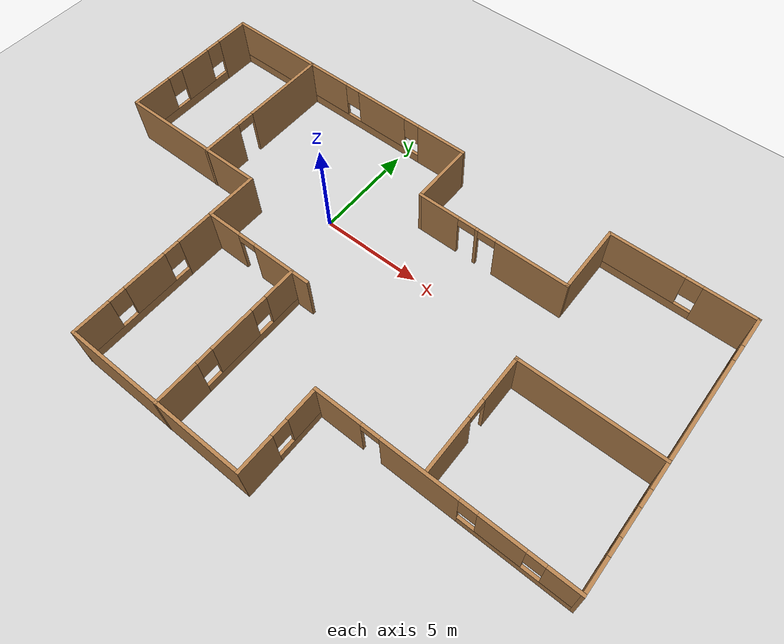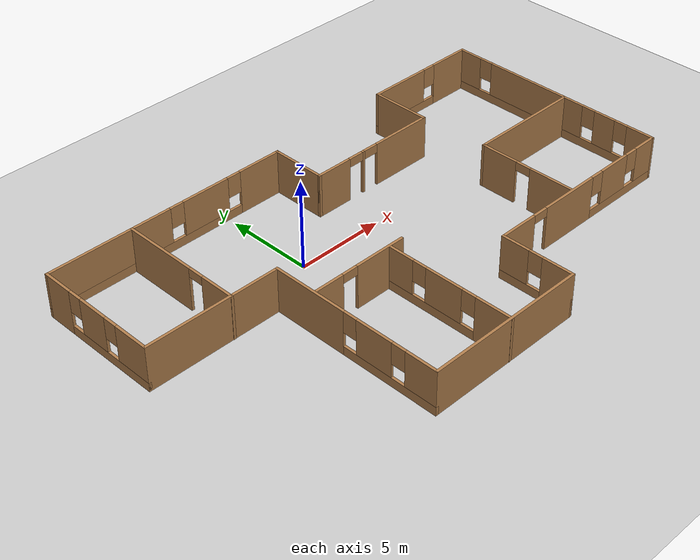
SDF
<sdf version="1.6">
 <world name="default">
  <light name="sun" type="directional">
   <pose>0 0 10 0 -0 0</pose>
   <diffuse>0.8 0.8 0.8 1</diffuse>
   <specular>0.2 0.2 0.2 1</specular>
   <attenuation>
    <range>1000</range>
    <constant>0.9</constant>
    <linear>0.01</linear>
    <quadratic>0.001</quadratic>
   </attenuation>
   <direction>-0.5 0.1 -0.9</direction>
  </light>
  <model name="ground_plane">
   <static>1</static>
   <link name="link">
    <collision name="collision">
     <geometry><plane><normal>0 0 1</normal><size>100 100</size></plane></geometry>
     <surface><friction><ode><mu>100</mu><mu2>50</mu2></ode></friction></surface>
    </collision>
    <visual name="visual">
     <cast_shadows>0</cast_shadows>
     <geometry><plane><normal>0 0 1</normal><size>100 100</size></plane></geometry>
     <material>
      <script><uri>file://media/materials/scripts/gazebo.material</uri><name>Gazebo/Grey</name></script>
     </material>
    </visual>
   </link>
  </model>
  <gravity>0 0 -9.8</gravity>
  <magnetic_field>6e-06 2.3e-05 -4.2e-05</magnetic_field>
  <atmosphere type="adiabatic"/>
  <physics name="default_physics" default="0" type="ode">
   <max_step_size>0.001</max_step_size>
   <real_time_factor>1</real_time_factor>
   <real_time_update_rate>1000</real_time_update_rate>
  </physics>
  <scene><ambient>0.4 0.4 0.4 1</ambient><background>0.7 0.7 0.7 1</background><shadows>1</shadows></scene>
  <spherical_coordinates>
   <surface_model>EARTH_WGS84</surface_model>
   <latitude_deg>0</latitude_deg>
   <longitude_deg>0</longitude_deg>
   <elevation>0</elevation>
   <heading_deg>0</heading_deg>
  </spherical_coordinates>
  <model name="wood">
   <pose>3.635 -2.82458 0 0 -0 0</pose>
   <link name="Wall_0">
    <pose>-6.675 -3.67042 0 0 0 -1.5708</pose>
    <visual name="Wall_0_Visual_0">
     <pose>-2.79686 0 1.25 0 -0 0</pose>
     <geometry><box><size>4.40627 0.15 2.5</size></box></geometry>
     <material>
      <script><uri>file://media/materials/scripts/gazebo.material</uri><name>Gazebo/Wood</name></script>
      <ambient>1 1 1 1</ambient>
     </material>
     <meta><layer>0</layer></meta>
    </visual>
    <collision name="Wall_0_Collision_0">
     <geometry><box><size>4.40627 0.15 2.5</size></box></geometry>
     <pose>-2.79686 0 1.25 0 -0 0</pose>
    </collision>
    <visual name="Wall_0_Visual_1">
     <pose>2.20314 0 0.25 0 -0 0</pose>
     <geometry><box><size>5.59373 0.15 0.5</size></box></geometry>
     <material>
      <script><uri>file://media/materials/scripts/gazebo.material</uri><name>Gazebo/Wood</name></script>
      <ambient>1 1 1 1</ambient>
     </material>
     <meta><layer>0</layer></meta>
    </visual>
    <collision name="Wall_0_Collision_1">
     <geometry><box><size>5.59373 0.15 0.5</size></box></geometry>
     <pose>2.20314 0 0.25 0 -0 0</pose>
    </collision>
    <visual name="Wall_0_Visual_2">
     <pose>1.27544 0 1.5 0 -0 0</pose>
     <geometry><box><size>2.13833 0.15 2</size></box></geometry>
     <material>
      <script><uri>file://media/materials/scripts/gazebo.material</uri><name>Gazebo/Wood</name></script>
      <ambient>1 1 1 1</ambient>
     </material>
     <meta><layer>0</layer></meta>
    </visual>
    <collision name="Wall_0_Collision_2">
     <geometry><box><size>2.13833 0.15 2</size></box></geometry>
     <pose>1.27544 0 1.5 0 -0 0</pose>
    </collision>
    <visual name="Wall_0_Visual_3">
     <pose>4.0723 0 1.5 0 -0 0</pose>
     <geometry><box><size>1.85539 0.15 2</size></box></geometry>
     <material>
      <script><uri>file://media/materials/scripts/gazebo.material</uri><name>Gazebo/Wood</name></script>
      <ambient>1 1 1 1</ambient>
     </material>
     <meta><layer>0</layer></meta>
    </visual>
    <collision name="Wall_0_Collision_3">
     <geometry><box><size>1.85539 0.15 2</size></box></geometry>
     <pose>4.0723 0 1.5 0 -0 0</pose>
    </collision>
    <visual name="Wall_0_Visual_4">
     <pose>-0.193725 0 1.9 0 -0 0</pose>
     <geometry><box><size>0.8 0.15 1.2</size></box></geometry>
     <material>
      <script><uri>file://media/materials/scripts/gazebo.material</uri><name>Gazebo/Wood</name></script>
      <ambient>1 1 1 1</ambient>
     </material>
     <meta><layer>0</layer></meta>
    </visual>
    <collision name="Wall_0_Collision_4">
     <geometry><box><size>0.8 0.15 1.2</size></box></geometry>
     <pose>-0.193725 0 1.9 0 -0 0</pose>
    </collision>
    <visual name="Wall_0_Visual_5">
     <pose>2.74461 0 1.9 0 -0 0</pose>
     <geometry><box><size>0.8 0.15 1.2</size></box></geometry>
     <material>
      <script><uri>file://media/materials/scripts/gazebo.material</uri><name>Gazebo/Wood</name></script>
      <ambient>1 1 1 1</ambient>
     </material>
     <meta><layer>0</layer></meta>
    </visual>
    <collision name="Wall_0_Collision_5">
     <geometry><box><size>0.8 0.15 1.2</size></box></geometry>
     <pose>2.74461 0 1.9 0 -0 0</pose>
    </collision>
   </link>
   <link name="Wall_1">
    <collision name="Wall_1_Collision">
     <geometry><box><size>9.25 0.15 2.5</size></box></geometry>
     <pose>0 0 1.25 0 -0 0</pose>
    </collision>
    <visual name="Wall_1_Visual">
     <pose>0 0 1.25 0 -0 0</pose>
     <geometry><box><size>9.25 0.15 2.5</size></box></geometry>
     <material>
      <script><uri>file://media/materials/scripts/gazebo.material</uri><name>Gazebo/Wood</name></script>
      <ambient>1 1 1 1</ambient>
     </material>
     <meta><layer>0</layer></meta>
    </visual>
    <pose>-2.125 -8.59542 0 0 -0 0</pose>
   </link>
   <link name="Wall_10">
    <pose>-14.275 4.80458 0 0 0 -1.5708</pose>
    <visual name="Wall_10_Visual_0">
     <pose>-2.72535 0 1.25 0 -0 0</pose>
     <geometry><box><size>1.79929 0.15 2.5</size></box></geometry>
     <material>
      <script><uri>file://media/materials/scripts/gazebo.material</uri><name>Gazebo/Wood</name></script>
      <ambient>1 1 1 1</ambient>
     </material>
     <meta><layer>0</layer></meta>
    </visual>
    <collision name="Wall_10_Collision_0">
     <geometry><box><size>1.79929 0.15 2.5</size></box></geometry>
     <pose>-2.72535 0 1.25 0 -0 0</pose>
    </collision>
    <visual name="Wall_10_Visual_1">
     <pose>0.899645 0 0.25 0 -0 0</pose>
     <geometry><box><size>5.45071 0.15 0.5</size></box></geometry>
     <material>
      <script><uri>file://media/materials/scripts/gazebo.material</uri><name>Gazebo/Wood</name></script>
      <ambient>1 1 1 1</ambient>
     </material>
     <meta><layer>0</layer></meta>
    </visual>
    <collision name="Wall_10_Collision_1">
     <geometry><box><size>5.45071 0.15 0.5</size></box></geometry>
     <pose>0.899645 0 0.25 0 -0 0</pose>
    </collision>
    <visual name="Wall_10_Visual_2">
     <pose>-0.14019 0 1.5 0 -0 0</pose>
     <geometry><box><size>1.77104 0.15 2</size></box></geometry>
     <material>
      <script><uri>file://media/materials/scripts/gazebo.material</uri><name>Gazebo/Wood</name></script>
      <ambient>1 1 1 1</ambient>
     </material>
     <meta><layer>0</layer></meta>
    </visual>
    <collision name="Wall_10_Collision_2">
     <geometry><box><size>1.77104 0.15 2</size></box></geometry>
     <pose>-0.14019 0 1.5 0 -0 0</pose>
    </collision>
    <visual name="Wall_10_Visual_3">
     <pose>2.58516 0 1.5 0 -0 0</pose>
     <geometry><box><size>2.07967 0.15 2</size></box></geometry>
     <material>
      <script><uri>file://media/materials/scripts/gazebo.material</uri><name>Gazebo/Wood</name></script>
      <ambient>1 1 1 1</ambient>
     </material>
     <meta><layer>0</layer></meta>
    </visual>
    <collision name="Wall_10_Collision_3">
     <geometry><box><size>2.07967 0.15 2</size></box></geometry>
     <pose>2.58516 0 1.5 0 -0 0</pose>
    </collision>
    <visual name="Wall_10_Visual_4">
     <pose>-1.42571 0 1.9 0 -0 0</pose>
     <geometry><box><size>0.8 0.15 1.2</size></box></geometry>
     <material>
      <script><uri>file://media/materials/scripts/gazebo.material</uri><name>Gazebo/Wood</name></script>
      <ambient>1 1 1 1</ambient>
     </material>
     <meta><layer>0</layer></meta>
    </visual>
    <collision name="Wall_10_Collision_4">
     <geometry><box><size>0.8 0.15 1.2</size></box></geometry>
     <pose>-1.42571 0 1.9 0 -0 0</pose>
    </collision>
    <visual name="Wall_10_Visual_5">
     <pose>1.14533 0 1.9 0 -0 0</pose>
     <geometry><box><size>0.8 0.15 1.2</size></box></geometry>
     <material>
      <script><uri>file://media/materials/scripts/gazebo.material</uri><name>Gazebo/Wood</name></script>
      <ambient>1 1 1 1</ambient>
     </material>
     <meta><layer>0</layer></meta>
    </visual>
    <collision name="Wall_10_Collision_5">
     <geometry><box><size>0.8 0.15 1.2</size></box></geometry>
     <pose>1.14533 0 1.9 0 -0 0</pose>
    </collision>
   </link>
   <link name="Wall_11">
    <collision name="Wall_11_Collision">
     <geometry><box><size>7.75 0.15 2.5</size></box></geometry>
     <pose>0 0 1.25 0 -0 0</pose>
    </collision>
    <visual name="Wall_11_Visual">
     <pose>0 0 1.25 0 -0 0</pose>
     <geometry><box><size>7.75 0.15 2.5</size></box></geometry>
     <material>
      <script><uri>file://media/materials/scripts/gazebo.material</uri><name>Gazebo/Wood</name></script>
      <ambient>1 1 1 1</ambient>
     </material>
     <meta><layer>0</layer></meta>
    </visual>
    <pose>-10.475 1.25458 0 0 -0 0</pose>
   </link>
   <link name="Wall_13">
    <pose>-9.45308 4.78687 0 0 0 -1.5708</pose>
    <visual name="Wall_13_Visual_0">
     <pose>-1.47369 0 1.25 0 -0 0</pose>
     <geometry><box><size>4.30262 0.15 2.5</size></box></geometry>
     <material>
      <script><uri>file://media/materials/scripts/gazebo.material</uri><name>Gazebo/Wood</name></script>
      <ambient>1 1 1 1</ambient>
     </material>
     <meta><layer>0</layer></meta>
    </visual>
    <collision name="Wall_13_Collision_0">
     <geometry><box><size>4.30262 0.15 2.5</size></box></geometry>
     <pose>-1.47369 0 1.25 0 -0 0</pose>
    </collision>
    <visual name="Wall_13_Visual_1">
     <pose>2.60131 0 1.25 0 -0 0</pose>
     <geometry><box><size>2.04738 0.15 2.5</size></box></geometry>
     <material>
      <script><uri>file://media/materials/scripts/gazebo.material</uri><name>Gazebo/Wood</name></script>
      <ambient>1 1 1 1</ambient>
     </material>
     <meta><layer>0</layer></meta>
    </visual>
    <collision name="Wall_13_Collision_1">
     <geometry><box><size>2.04738 0.15 2.5</size></box></geometry>
     <pose>2.60131 0 1.25 0 -0 0</pose>
    </collision>
    <visual name="Wall_13_Visual_2">
     <pose>1.12762 0 2.25 0 -0 0</pose>
     <geometry><box><size>0.9 0.15 0.5</size></box></geometry>
     <material>
      <script><uri>file://media/materials/scripts/gazebo.material</uri><name>Gazebo/Wood</name></script>
      <ambient>1 1 1 1</ambient>
     </material>
     <meta><layer>0</layer></meta>
    </visual>
    <collision name="Wall_13_Collision_2">
     <geometry><box><size>0.9 0.15 0.5</size></box></geometry>
     <pose>1.12762 0 2.25 0 -0 0</pose>
    </collision>
   </link>
   <link name="Wall_15">
    <pose>-1.87803 -4.92958 0 0 -0 1.5708</pose>
    <visual name="Wall_15_Visual_0">
     <pose>-2.68655 0 1.25 0 -0 0</pose>
     <geometry><box><size>2.1269 0.15 2.5</size></box></geometry>
     <material>
      <script><uri>file://media/materials/scripts/gazebo.material</uri><name>Gazebo/Wood</name></script>
      <ambient>1 1 1 1</ambient>
     </material>
     <meta><layer>0</layer></meta>
    </visual>
    <collision name="Wall_15_Collision_0">
     <geometry><box><size>2.1269 0.15 2.5</size></box></geometry>
     <pose>-2.68655 0 1.25 0 -0 0</pose>
    </collision>
    <visual name="Wall_15_Visual_1">
     <pose>1.06345 0 0.25 0 -0 0</pose>
     <geometry><box><size>5.3731 0.15 0.5</size></box></geometry>
     <material>
      <script><uri>file://media/materials/scripts/gazebo.material</uri><name>Gazebo/Wood</name></script>
      <ambient>1 1 1 1</ambient>
     </material>
     <meta><layer>0</layer></meta>
    </visual>
    <collision name="Wall_15_Collision_1">
     <geometry><box><size>5.3731 0.15 0.5</size></box></geometry>
     <pose>1.06345 0 0.25 0 -0 0</pose>
    </collision>
    <visual name="Wall_15_Visual_2">
     <pose>0.272302 0 1.5 0 -0 0</pose>
     <geometry><box><size>2.1908 0.15 2</size></box></geometry>
     <material>
      <script><uri>file://media/materials/scripts/gazebo.material</uri><name>Gazebo/Wood</name></script>
      <ambient>1 1 1 1</ambient>
     </material>
     <meta><layer>0</layer></meta>
    </visual>
    <collision name="Wall_15_Collision_2">
     <geometry><box><size>2.1908 0.15 2</size></box></geometry>
     <pose>0.272302 0 1.5 0 -0 0</pose>
    </collision>
    <visual name="Wall_15_Visual_3">
     <pose>2.95885 0 1.5 0 -0 0</pose>
     <geometry><box><size>1.5823 0.15 2</size></box></geometry>
     <material>
      <script><uri>file://media/materials/scripts/gazebo.material</uri><name>Gazebo/Wood</name></script>
      <ambient>1 1 1 1</ambient>
     </material>
     <meta><layer>0</layer></meta>
    </visual>
    <collision name="Wall_15_Collision_3">
     <geometry><box><size>1.5823 0.15 2</size></box></geometry>
     <pose>2.95885 0 1.5 0 -0 0</pose>
    </collision>
    <visual name="Wall_15_Visual_4">
     <pose>-1.2231 0 1.9 0 -0 0</pose>
     <geometry><box><size>0.8 0.15 1.2</size></box></geometry>
     <material>
      <script><uri>file://media/materials/scripts/gazebo.material</uri><name>Gazebo/Wood</name></script>
      <ambient>1 1 1 1</ambient>
     </material>
     <meta><layer>0</layer></meta>
    </visual>
    <collision name="Wall_15_Collision_4">
     <geometry><box><size>0.8 0.15 1.2</size></box></geometry>
     <pose>-1.2231 0 1.9 0 -0 0</pose>
    </collision>
    <visual name="Wall_15_Visual_5">
     <pose>1.7677 0 1.9 0 -0 0</pose>
     <geometry><box><size>0.8 0.15 1.2</size></box></geometry>
     <material>
      <script><uri>file://media/materials/scripts/gazebo.material</uri><name>Gazebo/Wood</name></script>
      <ambient>1 1 1 1</ambient>
     </material>
     <meta><layer>0</layer></meta>
    </visual>
    <collision name="Wall_15_Collision_5">
     <geometry><box><size>0.8 0.15 1.2</size></box></geometry>
     <pose>1.7677 0 1.9 0 -0 0</pose>
    </collision>
   </link>
   <link name="Wall_17">
    <pose>-3.85137 -1.19704 0 0 -0 0</pose>
    <visual name="Wall_17_Visual_0">
     <pose>-1.97094 0 1.25 0 -0 0</pose>
     <geometry><box><size>1.80812 0.15 2.5</size></box></geometry>
     <material>
      <script><uri>file://media/materials/scripts/gazebo.material</uri><name>Gazebo/Wood</name></script>
      <ambient>1 1 1 1</ambient>
     </material>
     <meta><layer>0</layer></meta>
    </visual>
    <collision name="Wall_17_Collision_0">
     <geometry><box><size>1.80812 0.15 2.5</size></box></geometry>
     <pose>-1.97094 0 1.25 0 -0 0</pose>
    </collision>
    <visual name="Wall_17_Visual_1">
     <pose>1.35406 0 1.25 0 -0 0</pose>
     <geometry><box><size>3.04188 0.15 2.5</size></box></geometry>
     <material>
      <script><uri>file://media/materials/scripts/gazebo.material</uri><name>Gazebo/Wood</name></script>
      <ambient>1 1 1 1</ambient>
     </material>
     <meta><layer>0</layer></meta>
    </visual>
    <collision name="Wall_17_Collision_1">
     <geometry><box><size>3.04188 0.15 2.5</size></box></geometry>
     <pose>1.35406 0 1.25 0 -0 0</pose>
    </collision>
    <visual name="Wall_17_Visual_2">
     <pose>-0.616879 0 2.25 0 -0 0</pose>
     <geometry><box><size>0.9 0.15 0.5</size></box></geometry>
     <material>
      <script><uri>file://media/materials/scripts/gazebo.material</uri><name>Gazebo/Wood</name></script>
      <ambient>1 1 1 1</ambient>
     </material>
     <meta><layer>0</layer></meta>
    </visual>
    <collision name="Wall_17_Collision_2">
     <geometry><box><size>0.9 0.15 0.5</size></box></geometry>
     <pose>-0.616879 0 2.25 0 -0 0</pose>
    </collision>
   </link>
   <link name="Wall_2">
    <pose>2.425 -6.54542 0 0 -0 1.5708</pose>
    <visual name="Wall_2_Visual_0">
     <pose>-1.22354 0 1.25 0 -0 0</pose>
     <geometry><box><size>1.80292 0.15 2.5</size></box></geometry>
     <material>
      <script><uri>file://media/materials/scripts/gazebo.material</uri><name>Gazebo/Wood</name></script>
      <ambient>1 1 1 1</ambient>
     </material>
     <meta><layer>0</layer></meta>
    </visual>
    <collision name="Wall_2_Collision_0">
     <geometry><box><size>1.80292 0.15 2.5</size></box></geometry>
     <pose>-1.22354 0 1.25 0 -0 0</pose>
    </collision>
    <visual name="Wall_2_Visual_1">
     <pose>0.901462 0 0.25 0 -0 0</pose>
     <geometry><box><size>2.44708 0.15 0.5</size></box></geometry>
     <material>
      <script><uri>file://media/materials/scripts/gazebo.material</uri><name>Gazebo/Wood</name></script>
      <ambient>1 1 1 1</ambient>
     </material>
     <meta><layer>0</layer></meta>
    </visual>
    <collision name="Wall_2_Collision_1">
     <geometry><box><size>2.44708 0.15 0.5</size></box></geometry>
     <pose>0.901462 0 0.25 0 -0 0</pose>
    </collision>
    <visual name="Wall_2_Visual_2">
     <pose>1.30146 0 1.5 0 -0 0</pose>
     <geometry><box><size>1.64708 0.15 2</size></box></geometry>
     <material>
      <script><uri>file://media/materials/scripts/gazebo.material</uri><name>Gazebo/Wood</name></script>
      <ambient>1 1 1 1</ambient>
     </material>
     <meta><layer>0</layer></meta>
    </visual>
    <collision name="Wall_2_Collision_2">
     <geometry><box><size>1.64708 0.15 2</size></box></geometry>
     <pose>1.30146 0 1.5 0 -0 0</pose>
    </collision>
    <visual name="Wall_2_Visual_3">
     <pose>0.077924 0 1.9 0 -0 0</pose>
     <geometry><box><size>0.8 0.15 1.2</size></box></geometry>
     <material>
      <script><uri>file://media/materials/scripts/gazebo.material</uri><name>Gazebo/Wood</name></script>
      <ambient>1 1 1 1</ambient>
     </material>
     <meta><layer>0</layer></meta>
    </visual>
    <collision name="Wall_2_Collision_3">
     <geometry><box><size>0.8 0.15 1.2</size></box></geometry>
     <pose>0.077924 0 1.9 0 -0 0</pose>
    </collision>
   </link>
   <link name="Wall_20">
    <collision name="Wall_20_Collision">
     <geometry><box><size>6.75 0.15 2.5</size></box></geometry>
     <pose>0 0 1.25 0 -0 0</pose>
    </collision>
    <visual name="Wall_20_Visual">
     <pose>0 0 1.25 0 -0 0</pose>
     <geometry><box><size>6.75 0.15 2.5</size></box></geometry>
     <material>
      <script><uri>file://media/materials/scripts/gazebo.material</uri><name>Gazebo/Wood</name></script>
      <ambient>1 1 1 1</ambient>
     </material>
     <meta><layer>0</layer></meta>
    </visual>
    <pose>10.9646 1.24644 0 0 -0 0</pose>
   </link>
   <link name="Wall_22">
    <pose>7.66461 -1.55356 0 0 0 -1.5708</pose>
    <visual name="Wall_22_Visual_0">
     <pose>-1.75034 0 1.25 0 -0 0</pose>
     <geometry><box><size>2.24933 0.15 2.5</size></box></geometry>
     <material>
      <script><uri>file://media/materials/scripts/gazebo.material</uri><name>Gazebo/Wood</name></script>
      <ambient>1 1 1 1</ambient>
     </material>
     <meta><layer>0</layer></meta>
    </visual>
    <collision name="Wall_22_Collision_0">
     <geometry><box><size>2.24933 0.15 2.5</size></box></geometry>
     <pose>-1.75034 0 1.25 0 -0 0</pose>
    </collision>
    <visual name="Wall_22_Visual_1">
     <pose>1.57466 0 1.25 0 -0 0</pose>
     <geometry><box><size>2.60067 0.15 2.5</size></box></geometry>
     <material>
      <script><uri>file://media/materials/scripts/gazebo.material</uri><name>Gazebo/Wood</name></script>
      <ambient>1 1 1 1</ambient>
     </material>
     <meta><layer>0</layer></meta>
    </visual>
    <collision name="Wall_22_Collision_1">
     <geometry><box><size>2.60067 0.15 2.5</size></box></geometry>
     <pose>1.57466 0 1.25 0 -0 0</pose>
    </collision>
    <visual name="Wall_22_Visual_2">
     <pose>-0.175674 0 2.25 0 -0 0</pose>
     <geometry><box><size>0.9 0.15 0.5</size></box></geometry>
     <material>
      <script><uri>file://media/materials/scripts/gazebo.material</uri><name>Gazebo/Wood</name></script>
      <ambient>1 1 1 1</ambient>
     </material>
     <meta><layer>0</layer></meta>
    </visual>
    <collision name="Wall_22_Collision_2">
     <geometry><box><size>0.9 0.15 0.5</size></box></geometry>
     <pose>-0.175674 0 2.25 0 -0 0</pose>
    </collision>
   </link>
   <link name="Wall_3">
    <pose>8.35 -4.49542 0 0 -0 0</pose>
    <visual name="Wall_3_Visual_0">
     <pose>-4.8331 0 1.25 0 -0 0</pose>
     <geometry><box><size>2.33379 0.15 2.5</size></box></geometry>
     <material>
      <script><uri>file://media/materials/scripts/gazebo.material</uri><name>Gazebo/Wood</name></script>
      <ambient>1 1 1 1</ambient>
     </material>
     <meta><layer>0</layer></meta>
    </visual>
    <collision name="Wall_3_Collision_0">
     <geometry><box><size>2.33379 0.15 2.5</size></box></geometry>
     <pose>-4.8331 0 1.25 0 -0 0</pose>
    </collision>
    <visual name="Wall_3_Visual_1">
     <pose>-0.961227 0 1.25 0 -0 0</pose>
     <geometry><box><size>3.60997 0.15 2.5</size></box></geometry>
     <material>
      <script><uri>file://media/materials/scripts/gazebo.material</uri><name>Gazebo/Wood</name></script>
      <ambient>1 1 1 1</ambient>
     </material>
     <meta><layer>0</layer></meta>
    </visual>
    <collision name="Wall_3_Collision_1">
     <geometry><box><size>3.60997 0.15 2.5</size></box></geometry>
     <pose>-0.961227 0 1.25 0 -0 0</pose>
    </collision>
    <visual name="Wall_3_Visual_2">
     <pose>3.42188 0 0.25 0 -0 0</pose>
     <geometry><box><size>5.15624 0.15 0.5</size></box></geometry>
     <material>
      <script><uri>file://media/materials/scripts/gazebo.material</uri><name>Gazebo/Wood</name></script>
      <ambient>1 1 1 1</ambient>
     </material>
     <meta><layer>0</layer></meta>
    </visual>
    <collision name="Wall_3_Collision_2">
     <geometry><box><size>5.15624 0.15 0.5</size></box></geometry>
     <pose>3.42188 0 0.25 0 -0 0</pose>
    </collision>
    <visual name="Wall_3_Visual_3">
     <pose>2.66045 0 1.5 0 -0 0</pose>
     <geometry><box><size>2.03339 0.15 2</size></box></geometry>
     <material>
      <script><uri>file://media/materials/scripts/gazebo.material</uri><name>Gazebo/Wood</name></script>
      <ambient>1 1 1 1</ambient>
     </material>
     <meta><layer>0</layer></meta>
    </visual>
    <collision name="Wall_3_Collision_3">
     <geometry><box><size>2.03339 0.15 2</size></box></geometry>
     <pose>2.66045 0 1.5 0 -0 0</pose>
    </collision>
    <visual name="Wall_3_Visual_4">
     <pose>5.23857 0 1.5 0 -0 0</pose>
     <geometry><box><size>1.52285 0.15 2</size></box></geometry>
     <material>
      <script><uri>file://media/materials/scripts/gazebo.material</uri><name>Gazebo/Wood</name></script>
      <ambient>1 1 1 1</ambient>
     </material>
     <meta><layer>0</layer></meta>
    </visual>
    <collision name="Wall_3_Collision_4">
     <geometry><box><size>1.52285 0.15 2</size></box></geometry>
     <pose>5.23857 0 1.5 0 -0 0</pose>
    </collision>
    <visual name="Wall_3_Visual_5">
     <pose>1.24376 0 1.9 0 -0 0</pose>
     <geometry><box><size>0.8 0.15 1.2</size></box></geometry>
     <material>
      <script><uri>file://media/materials/scripts/gazebo.material</uri><name>Gazebo/Wood</name></script>
      <ambient>1 1 1 1</ambient>
     </material>
     <meta><layer>0</layer></meta>
    </visual>
    <collision name="Wall_3_Collision_5">
     <geometry><box><size>0.8 0.15 1.2</size></box></geometry>
     <pose>1.24376 0 1.9 0 -0 0</pose>
    </collision>
    <visual name="Wall_3_Visual_6">
     <pose>4.07715 0 1.9 0 -0 0</pose>
     <geometry><box><size>0.8 0.15 1.2</size></box></geometry>
     <material>
      <script><uri>file://media/materials/scripts/gazebo.material</uri><name>Gazebo/Wood</name></script>
      <ambient>1 1 1 1</ambient>
     </material>
     <meta><layer>0</layer></meta>
    </visual>
    <collision name="Wall_3_Collision_6">
     <geometry><box><size>0.8 0.15 1.2</size></box></geometry>
     <pose>4.07715 0 1.9 0 -0 0</pose>
    </collision>
    <visual name="Wall_3_Visual_7">
     <pose>-3.21621 0 2.25 0 -0 0</pose>
     <geometry><box><size>0.9 0.15 0.5</size></box></geometry>
     <material>
      <script><uri>file://media/materials/scripts/gazebo.material</uri><name>Gazebo/Wood</name></script>
      <ambient>1 1 1 1</ambient>
     </material>
     <meta><layer>0</layer></meta>
    </visual>
    <collision name="Wall_3_Collision_7">
     <geometry><box><size>0.9 0.15 0.5</size></box></geometry>
     <pose>-3.21621 0 2.25 0 -0 0</pose>
    </collision>
   </link>
   <link name="Wall_4">
    <pose>14.275 2.05458 0 0 -0 1.5708</pose>
    <visual name="Wall_4_Visual_0">
     <pose>-5.80591 0 1.25 0 -0 0</pose>
     <geometry><box><size>1.63819 0.15 2.5</size></box></geometry>
     <material>
      <script><uri>file://media/materials/scripts/gazebo.material</uri><name>Gazebo/Wood</name></script>
      <ambient>1 1 1 1</ambient>
     </material>
     <meta><layer>0</layer></meta>
    </visual>
    <collision name="Wall_4_Collision_0">
     <geometry><box><size>1.63819 0.15 2.5</size></box></geometry>
     <pose>-5.80591 0 1.25 0 -0 0</pose>
    </collision>
    <visual name="Wall_4_Visual_1">
     <pose>0.819094 0 0.25 0 -0 0</pose>
     <geometry><box><size>11.6118 0.15 0.5</size></box></geometry>
     <material>
      <script><uri>file://media/materials/scripts/gazebo.material</uri><name>Gazebo/Wood</name></script>
      <ambient>1 1 1 1</ambient>
     </material>
     <meta><layer>0</layer></meta>
    </visual>
    <collision name="Wall_4_Collision_1">
     <geometry><box><size>11.6118 0.15 0.5</size></box></geometry>
     <pose>0.819094 0 0.25 0 -0 0</pose>
    </collision>
    <visual name="Wall_4_Visual_2">
     <pose>-3.53741 0 1.5 0 -0 0</pose>
     <geometry><box><size>1.29881 0.15 2</size></box></geometry>
     <material>
      <script><uri>file://media/materials/scripts/gazebo.material</uri><name>Gazebo/Wood</name></script>
      <ambient>1 1 1 1</ambient>
     </material>
     <meta><layer>0</layer></meta>
    </visual>
    <collision name="Wall_4_Collision_2">
     <geometry><box><size>1.29881 0.15 2</size></box></geometry>
     <pose>-3.53741 0 1.5 0 -0 0</pose>
    </collision>
    <visual name="Wall_4_Visual_3">
     <pose>1.1062 0 1.5 0 -0 0</pose>
     <geometry><box><size>6.38842 0.15 2</size></box></geometry>
     <material>
      <script><uri>file://media/materials/scripts/gazebo.material</uri><name>Gazebo/Wood</name></script>
      <ambient>1 1 1 1</ambient>
     </material>
     <meta><layer>0</layer></meta>
    </visual>
    <collision name="Wall_4_Collision_3">
     <geometry><box><size>6.38842 0.15 2</size></box></geometry>
     <pose>1.1062 0 1.5 0 -0 0</pose>
    </collision>
    <visual name="Wall_4_Visual_4">
     <pose>5.86271 0 1.5 0 -0 0</pose>
     <geometry><box><size>1.52459 0.15 2</size></box></geometry>
     <material>
      <script><uri>file://media/materials/scripts/gazebo.material</uri><name>Gazebo/Wood</name></script>
      <ambient>1 1 1 1</ambient>
     </material>
     <meta><layer>0</layer></meta>
    </visual>
    <collision name="Wall_4_Collision_4">
     <geometry><box><size>1.52459 0.15 2</size></box></geometry>
     <pose>5.86271 0 1.5 0 -0 0</pose>
    </collision>
    <visual name="Wall_4_Visual_5">
     <pose>-4.58681 0 1.9 0 -0 0</pose>
     <geometry><box><size>0.8 0.15 1.2</size></box></geometry>
     <material>
      <script><uri>file://media/materials/scripts/gazebo.material</uri><name>Gazebo/Wood</name></script>
      <ambient>1 1 1 1</ambient>
     </material>
     <meta><layer>0</layer></meta>
    </visual>
    <collision name="Wall_4_Collision_5">
     <geometry><box><size>0.8 0.15 1.2</size></box></geometry>
     <pose>-4.58681 0 1.9 0 -0 0</pose>
    </collision>
    <visual name="Wall_4_Visual_6">
     <pose>-2.488 0 1.9 0 -0 0</pose>
     <geometry><box><size>0.8 0.15 1.2</size></box></geometry>
     <material>
      <script><uri>file://media/materials/scripts/gazebo.material</uri><name>Gazebo/Wood</name></script>
      <ambient>1 1 1 1</ambient>
     </material>
     <meta><layer>0</layer></meta>
    </visual>
    <collision name="Wall_4_Collision_6">
     <geometry><box><size>0.8 0.15 1.2</size></box></geometry>
     <pose>-2.488 0 1.9 0 -0 0</pose>
    </collision>
    <visual name="Wall_4_Visual_7">
     <pose>4.70041 0 1.9 0 -0 0</pose>
     <geometry><box><size>0.8 0.15 1.2</size></box></geometry>
     <material>
      <script><uri>file://media/materials/scripts/gazebo.material</uri><name>Gazebo/Wood</name></script>
      <ambient>1 1 1 1</ambient>
     </material>
     <meta><layer>0</layer></meta>
    </visual>
    <collision name="Wall_4_Collision_7">
     <geometry><box><size>0.8 0.15 1.2</size></box></geometry>
     <pose>4.70041 0 1.9 0 -0 0</pose>
    </collision>
   </link>
   <link name="Wall_5">
    <pose>10.85 8.60458 0 0 -0 3.14159</pose>
    <visual name="Wall_5_Visual_0">
     <pose>-2.24011 0 1.25 0 -0 0</pose>
     <geometry><box><size>2.51979 0.15 2.5</size></box></geometry>
     <material>
      <script><uri>file://media/materials/scripts/gazebo.material</uri><name>Gazebo/Wood</name></script>
      <ambient>1 1 1 1</ambient>
     </material>
     <meta><layer>0</layer></meta>
    </visual>
    <collision name="Wall_5_Collision_0">
     <geometry><box><size>2.51979 0.15 2.5</size></box></geometry>
     <pose>-2.24011 0 1.25 0 -0 0</pose>
    </collision>
    <visual name="Wall_5_Visual_1">
     <pose>1.25989 0 0.25 0 -0 0</pose>
     <geometry><box><size>4.48021 0.15 0.5</size></box></geometry>
     <material>
      <script><uri>file://media/materials/scripts/gazebo.material</uri><name>Gazebo/Wood</name></script>
      <ambient>1 1 1 1</ambient>
     </material>
     <meta><layer>0</layer></meta>
    </visual>
    <collision name="Wall_5_Collision_1">
     <geometry><box><size>4.48021 0.15 0.5</size></box></geometry>
     <pose>1.25989 0 0.25 0 -0 0</pose>
    </collision>
    <visual name="Wall_5_Visual_2">
     <pose>1.65989 0 1.5 0 -0 0</pose>
     <geometry><box><size>3.68021 0.15 2</size></box></geometry>
     <material>
      <script><uri>file://media/materials/scripts/gazebo.material</uri><name>Gazebo/Wood</name></script>
      <ambient>1 1 1 1</ambient>
     </material>
     <meta><layer>0</layer></meta>
    </visual>
    <collision name="Wall_5_Collision_2">
     <geometry><box><size>3.68021 0.15 2</size></box></geometry>
     <pose>1.65989 0 1.5 0 -0 0</pose>
    </collision>
    <visual name="Wall_5_Visual_3">
     <pose>-0.580213 0 1.9 0 -0 0</pose>
     <geometry><box><size>0.8 0.15 1.2</size></box></geometry>
     <material>
      <script><uri>file://media/materials/scripts/gazebo.material</uri><name>Gazebo/Wood</name></script>
      <ambient>1 1 1 1</ambient>
     </material>
     <meta><layer>0</layer></meta>
    </visual>
    <collision name="Wall_5_Collision_3">
     <geometry><box><size>0.8 0.15 1.2</size></box></geometry>
     <pose>-0.580213 0 1.9 0 -0 0</pose>
    </collision>
   </link>
   <link name="Wall_6">
    <collision name="Wall_6_Collision">
     <geometry><box><size>3.5 0.15 2.5</size></box></geometry>
     <pose>0 0 1.25 0 -0 0</pose>
    </collision>
    <visual name="Wall_6_Visual">
     <pose>0 0 1.25 0 -0 0</pose>
     <geometry><box><size>3.5 0.15 2.5</size></box></geometry>
     <material>
      <script><uri>file://media/materials/scripts/gazebo.material</uri><name>Gazebo/Wood</name></script>
      <ambient>1 1 1 1</ambient>
     </material>
     <meta><layer>0</layer></meta>
    </visual>
    <pose>7.425 6.92958 0 0 0 -1.5708</pose>
   </link>
   <link name="Wall_7">
    <pose>3.625 5.25458 0 0 -0 3.14159</pose>
    <visual name="Wall_7_Visual_0">
     <pose>-2.05114 0 1.25 0 -0 0</pose>
     <geometry><box><size>3.64773 0.15 2.5</size></box></geometry>
     <material>
      <script><uri>file://media/materials/scripts/gazebo.material</uri><name>Gazebo/Wood</name></script>
      <ambient>1 1 1 1</ambient>
     </material>
     <meta><layer>0</layer></meta>
    </visual>
    <collision name="Wall_7_Collision_0">
     <geometry><box><size>3.64773 0.15 2.5</size></box></geometry>
     <pose>-2.05114 0 1.25 0 -0 0</pose>
    </collision>
    <visual name="Wall_7_Visual_1">
     <pose>0.747428 0 1.25 0 -0 0</pose>
     <geometry><box><size>0.149404 0.15 2.5</size></box></geometry>
     <material>
      <script><uri>file://media/materials/scripts/gazebo.material</uri><name>Gazebo/Wood</name></script>
      <ambient>1 1 1 1</ambient>
     </material>
     <meta><layer>0</layer></meta>
    </visual>
    <collision name="Wall_7_Collision_1">
     <geometry><box><size>0.149404 0.15 2.5</size></box></geometry>
     <pose>0.747428 0 1.25 0 -0 0</pose>
    </collision>
    <visual name="Wall_7_Visual_2">
     <pose>2.79856 0 1.25 0 -0 0</pose>
     <geometry><box><size>2.15287 0.15 2.5</size></box></geometry>
     <material>
      <script><uri>file://media/materials/scripts/gazebo.material</uri><name>Gazebo/Wood</name></script>
      <ambient>1 1 1 1</ambient>
     </material>
     <meta><layer>0</layer></meta>
    </visual>
    <collision name="Wall_7_Collision_2">
     <geometry><box><size>2.15287 0.15 2.5</size></box></geometry>
     <pose>2.79856 0 1.25 0 -0 0</pose>
    </collision>
    <visual name="Wall_7_Visual_3">
     <pose>0.222726 0 2.25 0 -0 0</pose>
     <geometry><box><size>0.9 0.15 0.5</size></box></geometry>
     <material>
      <script><uri>file://media/materials/scripts/gazebo.material</uri><name>Gazebo/Wood</name></script>
      <ambient>1 1 1 1</ambient>
     </material>
     <meta><layer>0</layer></meta>
    </visual>
    <collision name="Wall_7_Collision_3">
     <geometry><box><size>0.9 0.15 0.5</size></box></geometry>
     <pose>0.222726 0 2.25 0 -0 0</pose>
    </collision>
    <visual name="Wall_7_Visual_4">
     <pose>1.27213 0 2.25 0 -0 0</pose>
     <geometry><box><size>0.9 0.15 0.5</size></box></geometry>
     <material>
      <script><uri>file://media/materials/scripts/gazebo.material</uri><name>Gazebo/Wood</name></script>
      <ambient>1 1 1 1</ambient>
     </material>
     <meta><layer>0</layer></meta>
    </visual>
    <collision name="Wall_7_Collision_4">
     <geometry><box><size>0.9 0.15 0.5</size></box></geometry>
     <pose>1.27213 0 2.25 0 -0 0</pose>
    </collision>
   </link>
   <link name="Wall_8">
    <collision name="Wall_8_Collision">
     <geometry><box><size>3.25 0.15 2.5</size></box></geometry>
     <pose>0 0 1.25 0 -0 0</pose>
    </collision>
    <visual name="Wall_8_Visual">
     <pose>0 0 1.25 0 -0 0</pose>
     <geometry><box><size>3.25 0.15 2.5</size></box></geometry>
     <material>
      <script><uri>file://media/materials/scripts/gazebo.material</uri><name>Gazebo/Wood</name></script>
      <ambient>1 1 1 1</ambient>
     </material>
     <meta><layer>0</layer></meta>
    </visual>
    <pose>-0.175 6.80458 0 0 -0 1.5708</pose>
   </link>
   <link name="Wall_9">
    <pose>-7.225 8.35458 0 0 -0 3.14159</pose>
    <visual name="Wall_9_Visual_0">
     <pose>-5.79675 0 1.25 0 -0 0</pose>
     <geometry><box><size>2.6565 0.15 2.5</size></box></geometry>
     <material>
      <script><uri>file://media/materials/scripts/gazebo.material</uri><name>Gazebo/Wood</name></script>
      <ambient>1 1 1 1</ambient>
     </material>
     <meta><layer>0</layer></meta>
    </visual>
    <collision name="Wall_9_Collision_0">
     <geometry><box><size>2.6565 0.15 2.5</size></box></geometry>
     <pose>-5.79675 0 1.25 0 -0 0</pose>
    </collision>
    <visual name="Wall_9_Visual_1">
     <pose>1.32825 0 0.25 0 -0 0</pose>
     <geometry><box><size>11.5935 0.15 0.5</size></box></geometry>
     <material>
      <script><uri>file://media/materials/scripts/gazebo.material</uri><name>Gazebo/Wood</name></script>
      <ambient>1 1 1 1</ambient>
     </material>
     <meta><layer>0</layer></meta>
    </visual>
    <collision name="Wall_9_Collision_1">
     <geometry><box><size>11.5935 0.15 0.5</size></box></geometry>
     <pose>1.32825 0 0.25 0 -0 0</pose>
    </collision>
    <visual name="Wall_9_Visual_2">
     <pose>-2.25828 0 1.5 0 -0 0</pose>
     <geometry><box><size>2.82044 0.15 2</size></box></geometry>
     <material>
      <script><uri>file://media/materials/scripts/gazebo.material</uri><name>Gazebo/Wood</name></script>
      <ambient>1 1 1 1</ambient>
     </material>
     <meta><layer>0</layer></meta>
    </visual>
    <collision name="Wall_9_Collision_2">
     <geometry><box><size>2.82044 0.15 2</size></box></geometry>
     <pose>-2.25828 0 1.5 0 -0 0</pose>
    </collision>
    <visual name="Wall_9_Visual_3">
     <pose>3.53847 0 1.5 0 -0 0</pose>
     <geometry><box><size>7.17306 0.15 2</size></box></geometry>
     <material>
      <script><uri>file://media/materials/scripts/gazebo.material</uri><name>Gazebo/Wood</name></script>
      <ambient>1 1 1 1</ambient>
     </material>
     <meta><layer>0</layer></meta>
    </visual>
    <collision name="Wall_9_Collision_3">
     <geometry><box><size>7.17306 0.15 2</size></box></geometry>
     <pose>3.53847 0 1.5 0 -0 0</pose>
    </collision>
    <visual name="Wall_9_Visual_4">
     <pose>-4.0685 0 1.9 0 -0 0</pose>
     <geometry><box><size>0.8 0.15 1.2</size></box></geometry>
     <material>
      <script><uri>file://media/materials/scripts/gazebo.material</uri><name>Gazebo/Wood</name></script>
      <ambient>1 1 1 1</ambient>
     </material>
     <meta><layer>0</layer></meta>
    </visual>
    <collision name="Wall_9_Collision_4">
     <geometry><box><size>0.8 0.15 1.2</size></box></geometry>
     <pose>-4.0685 0 1.9 0 -0 0</pose>
    </collision>
    <visual name="Wall_9_Visual_5">
     <pose>-0.448058 0 1.9 0 -0 0</pose>
     <geometry><box><size>0.8 0.15 1.2</size></box></geometry>
     <material>
      <script><uri>file://media/materials/scripts/gazebo.material</uri><name>Gazebo/Wood</name></script>
      <ambient>1 1 1 1</ambient>
     </material>
     <meta><layer>0</layer></meta>
    </visual>
    <collision name="Wall_9_Collision_5">
     <geometry><box><size>0.8 0.15 1.2</size></box></geometry>
     <pose>-0.448058 0 1.9 0 -0 0</pose>
    </collision>
   </link>
   <static>1</static>
  </model>
  <model name="my_ball">
   <link name="link_0">
    <inertial>
     <mass>1</mass>
     <inertia><ixx>0.1</ixx><ixy>0</ixy><ixz>0</ixz><iyy>0.1</iyy><iyz>0</iyz><izz>0.1</izz></inertia>
    </inertial>
    <visual name="visual">
     <geometry><sphere><radius>0.1</radius></sphere></geometry>
     <material>
      <lighting>1</lighting>
      <script><uri>file://media/materials/scripts/gazebo.material</uri><name>Gazebo/Grey</name></script>
      <ambient>1 1 1 1</ambient>
      <diffuse>1 1 1 1</diffuse>
      <specular>1 1 1 1</specular>
      <emissive>1 1 1 1</emissive>
      <shader type="vertex"><normal_map>__default__</normal_map></shader>
     </material>
    </visual>
    <collision name="collision">
     <geometry><sphere><radius>0.1</radius></sphere></geometry>
     <surface>
      <friction>
       <ode><mu>1</mu><mu2>1</mu2><fdir1>0 0 0</fdir1><slip1>0</slip1><slip2>0</slip2></ode>
       <torsional>
        <coefficient>1</coefficient>
        <patch_radius>0</patch_radius>
        <surface_radius>0</surface_radius>
        <use_patch_radius>1</use_patch_radius>
        <ode><slip>0</slip></ode>
       </torsional>
      </friction>
      <bounce><restitution_coefficient>0</restitution_coefficient><threshold>1e+06</threshold></bounce>
      <contact>
       <collide_without_contact>0</collide_without_contact>
       <collide_without_contact_bitmask>1</collide_without_contact_bitmask>
       <collide_bitmask>1</collide_bitmask>
       <ode>
        <soft_cfm>0</soft_cfm>
        <soft_erp>0.2</soft_erp>
        <kp>1e+13</kp>
        <kd>1</kd>
        <max_vel>0.01</max_vel>
        <min_depth>0</min_depth>
       </ode>
       <bullet>
        <split_impulse>1</split_impulse>
        <split_impulse_penetration_threshold>-0.01</split_impulse_penetration_threshold>
        <soft_cfm>0</soft_cfm>
        <soft_erp>0.2</soft_erp>
        <kp>1e+13</kp>
        <kd>1</kd>
       </bullet>
      </contact>
     </surface>
    </collision>
   </link>
   <static>0</static>
   <pose>-6.53004 -0.934644 0.1 0 -0 0</pose>
  </model>
  <plugin filename="libcollision_map_creator.so" name="collision_map_creator"/>
 </world>
</sdf>
